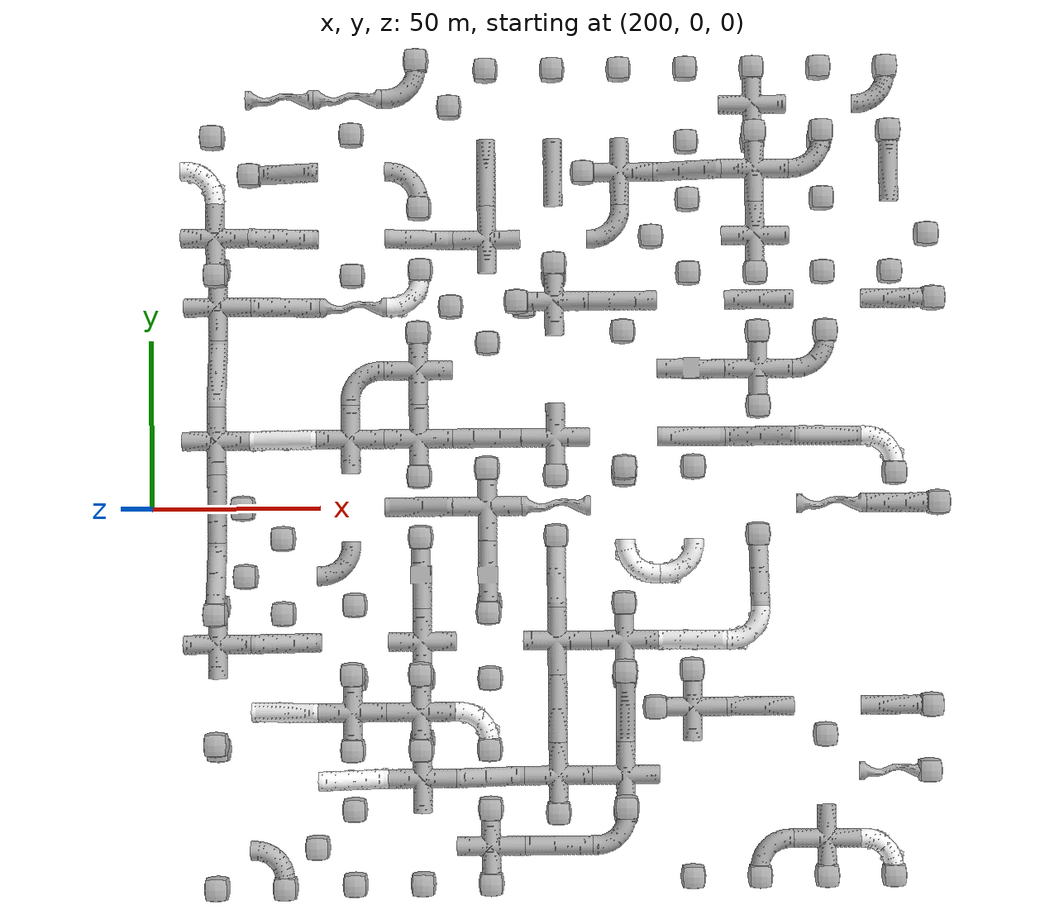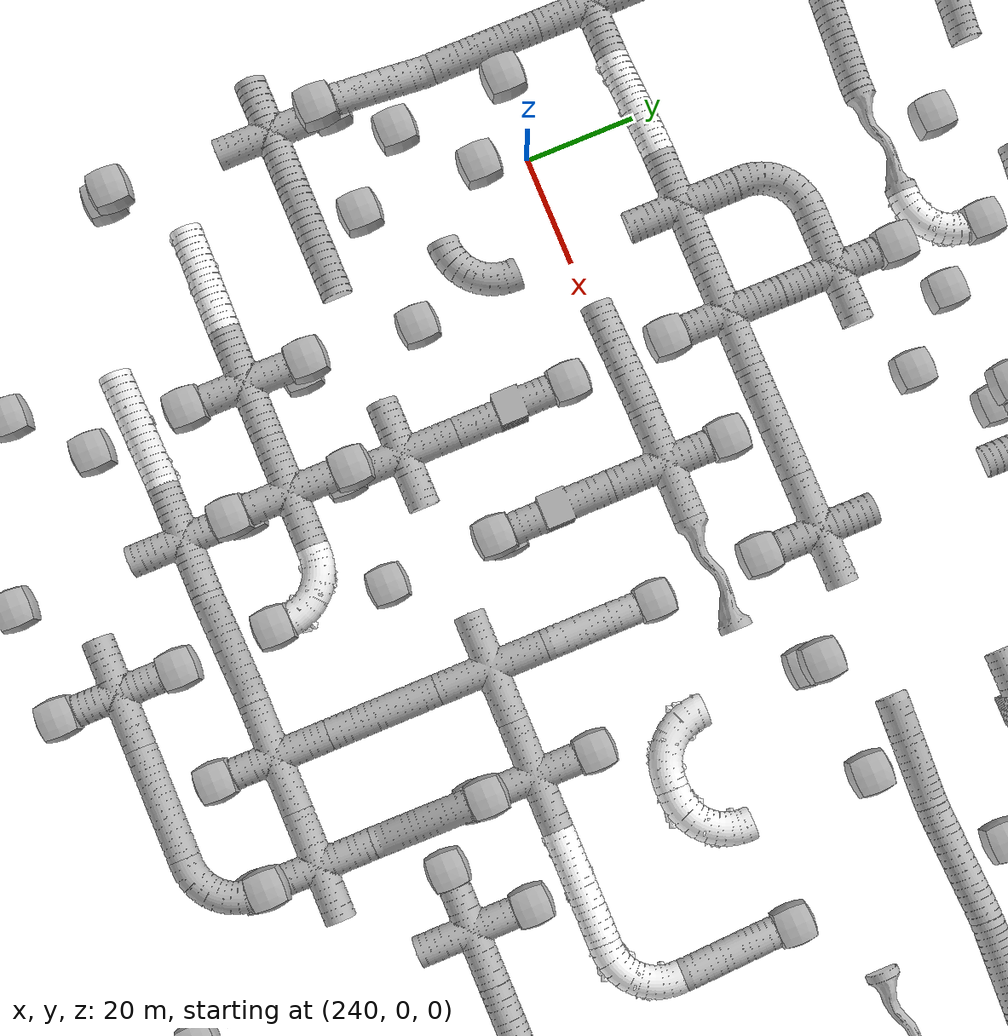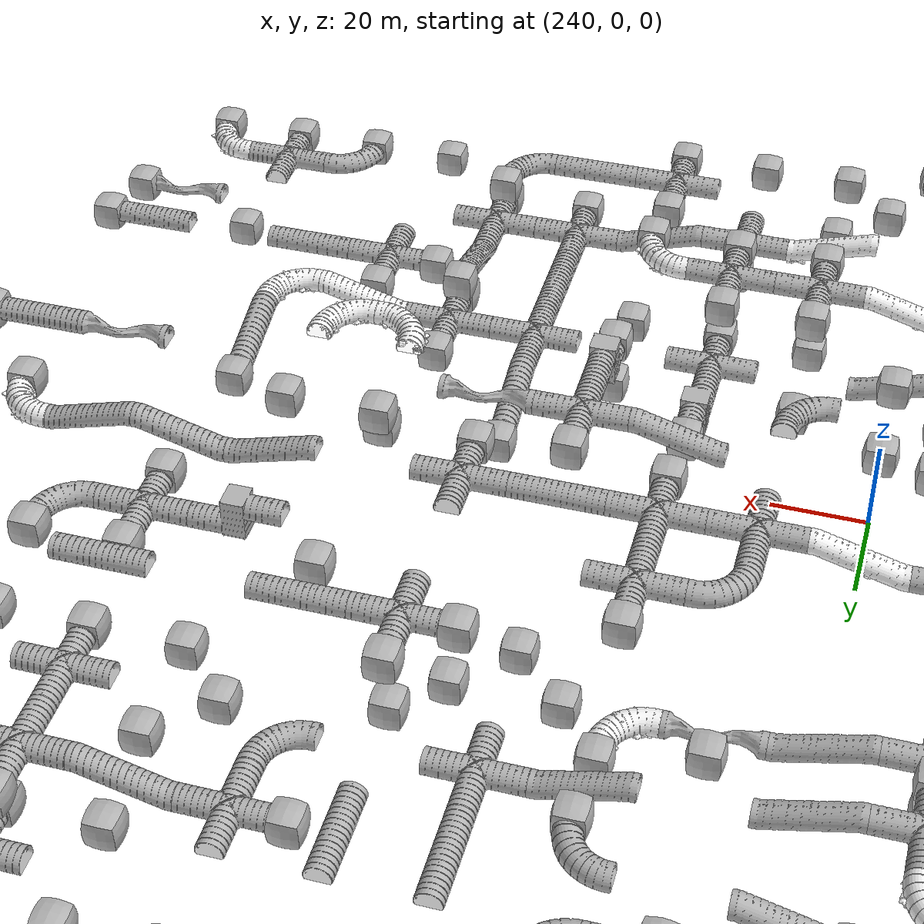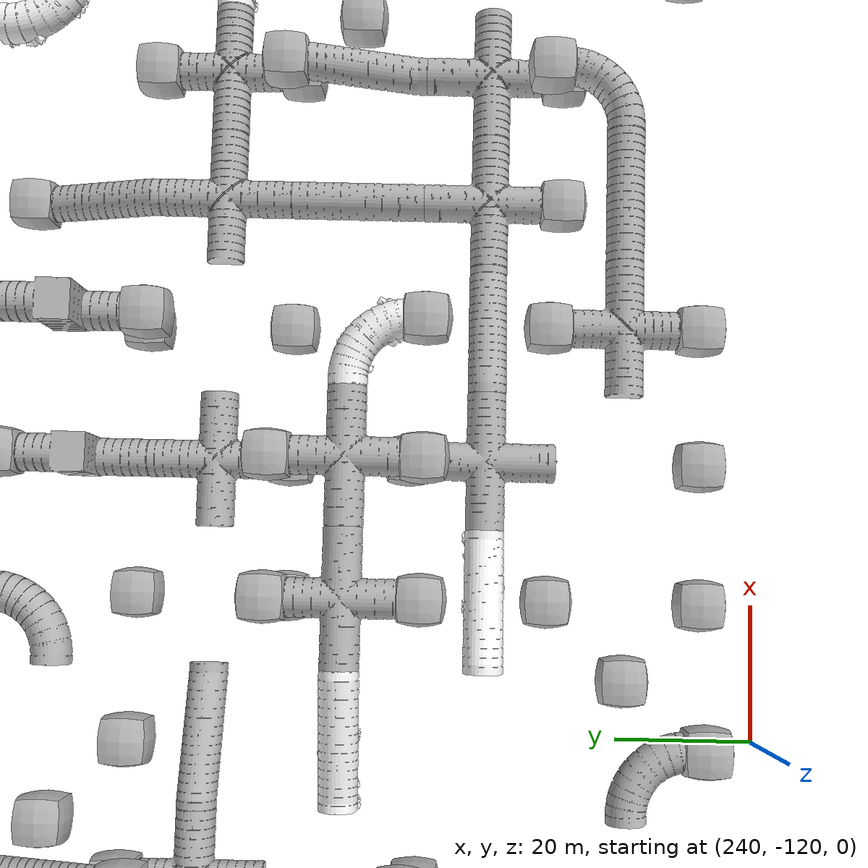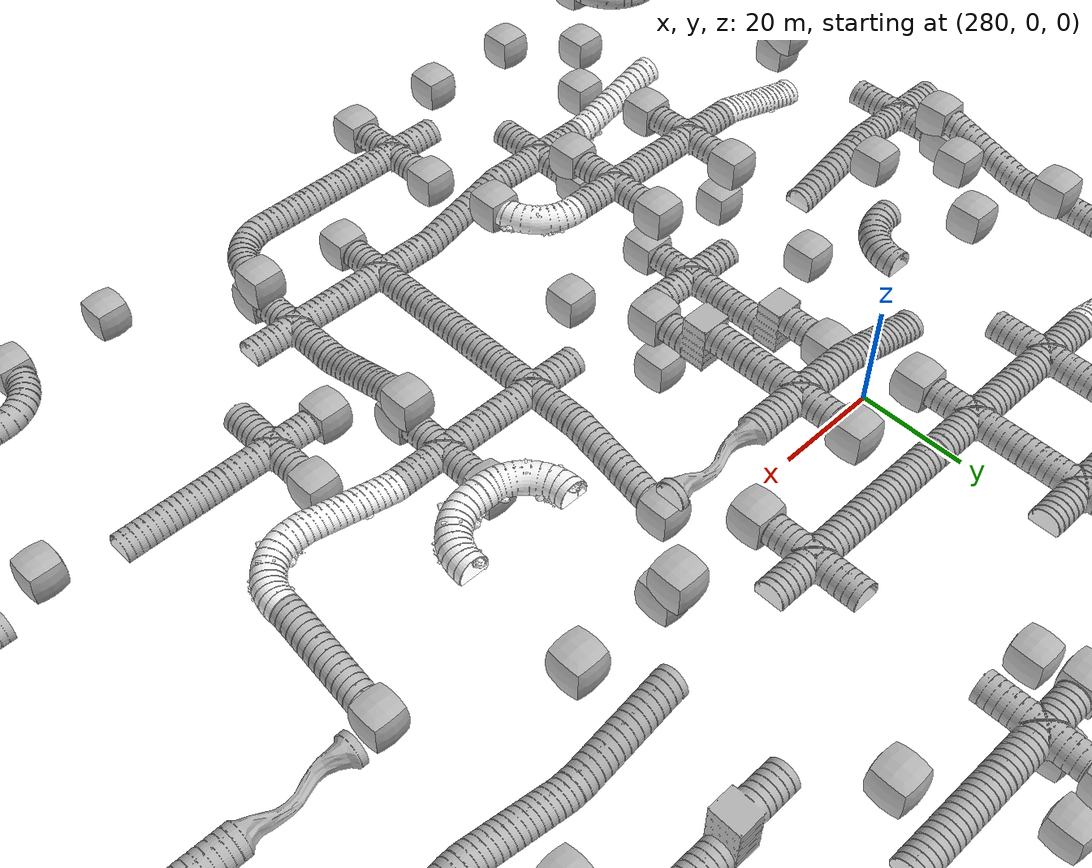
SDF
<sdf version="1.6">
 <world name="tunnel_circuit_practice_03">
  <include>
   <name>tile_27</name>
   <uri>model://tunnel_tile_blocker</uri>
   <pose>220.000000 109.000000 10.000000 0 0 0.000000</pose>
  </include>
  <include>
   <name>tile_28</name>
   <uri>model://constrained_tunnel_tile_short</uri>
   <pose>240.000000 120.000000 10.000000 0 0 1.570796</pose>
  </include>
  <include>
   <name>tile_29</name>
   <uri>model://constrained_tunnel_tile_short</uri>
   <pose>260.000000 120.000000 10.000000 0 0 1.570796</pose>
  </include>
  <include>
   <name>tile_30</name>
   <uri>model://tunnel_tile_2</uri>
   <pose>280.000000 120.000000 10.000000 0 0 3.141593</pose>
  </include>
  <include>
   <name>tile_31</name>
   <uri>model://tunnel_tile_blocker</uri>
   <pose>280.000000 131.000000 10.000000 0 0 0.000000</pose>
  </include>
  <include>
   <name>phone_1</name>
   <uri>model://Phone</uri>
   <pose>278.000000 121.200000 10.000000 -1.570796 0 0.261799</pose>
  </include>
  <include>
   <name>tile_33</name>
   <uri>model://tunnel_tile_blocker</uri>
   <pose>289.000000 120.000000 -5.000000 0 0 0.000000</pose>
  </include>
  <include>
   <name>tile_34</name>
   <uri>model://tunnel_tile_blocker</uri>
   <pose>300.000000 131.000000 -5.000000 0 0 0.000000</pose>
  </include>
  <include>
   <name>tile_36</name>
   <uri>model://tunnel_tile_blocker</uri>
   <pose>320.000000 131.000000 -5.000000 0 0 0.000000</pose>
  </include>
  <include>
   <name>tile_38</name>
   <uri>model://tunnel_tile_blocker</uri>
   <pose>340.000000 131.000000 -5.000000 0 0 0.000000</pose>
  </include>
  <include>
   <name>tile_40</name>
   <uri>model://tunnel_tile_blocker</uri>
   <pose>360.000000 131.000000 -5.000000 0 0 0.000000</pose>
  </include>
  <include>
   <name>tile_41</name>
   <uri>model://tunnel_tile_blocker</uri>
   <pose>360.000000 109.000000 -5.000000 0 0 0.000000</pose>
  </include>
  <include>
   <name>tile_42</name>
   <uri>model://tunnel_tile_1</uri>
   <pose>380.000000 120.000000 -5.000000 0 0 0.000000</pose>
  </include>
  <include>
   <name>tile_43</name>
   <uri>model://tunnel_tile_blocker</uri>
   <pose>380.000000 131.000000 -5.000000 0 0 0.000000</pose>
  </include>
  <include>
   <name>tile_44</name>
   <uri>model://tunnel_tile_blocker</uri>
   <pose>380.000000 109.000000 -5.000000 0 0 0.000000</pose>
  </include>
  <include>
   <name>tile_46</name>
   <uri>model://tunnel_tile_blocker</uri>
   <pose>400.000000 131.000000 -5.000000 0 0 0.000000</pose>
  </include>
  <include>
   <name>tile_47</name>
   <uri>model://tunnel_tile_blocker</uri>
   <pose>400.000000 109.000000 -5.000000 0 0 0.000000</pose>
  </include>
  <include>
   <name>tile_48</name>
   <uri>model://tunnel_tile_2</uri>
   <pose>420.000000 120.000000 -5.000000 0 0 3.141593</pose>
  </include>
  <include>
   <name>tile_49</name>
   <uri>model://tunnel_tile_blocker</uri>
   <pose>420.000000 131.000000 -5.000000 0 0 0.000000</pose>
  </include>
  <include>
   <name>tile_66</name>
   <uri>model://Rough Tunnel Tile 90-degree Turn</uri>
   <pose>220.000000 100.000000 5.000000 0 0 4.712389</pose>
  </include>
  <include>
   <name>tile_67</name>
   <uri>model://tunnel_tile_6</uri>
   <pose>240.000000 100.000000 -5.000000 0 0 4.712389</pose>
  </include>
  <include>
   <name>tile_68</name>
   <uri>model://tunnel_tile_blocker</uri>
   <pose>229.000000 100.000000 -5.000000 0 0 0.000000</pose>
  </include>
  <include>
   <name>tile_70</name>
   <uri>model://tunnel_tile_blocker</uri>
   <pose>260.000000 111.000000 0.000000 0 0 0.000000</pose>
  </include>
  <include>
   <name>tile_71</name>
   <uri>model://tunnel_tile_2</uri>
   <pose>280.000000 100.000000 0.000000 0 0 4.712389</pose>
  </include>
  <include>
   <name>tile_72</name>
   <uri>model://tunnel_tile_blocker</uri>
   <pose>280.000000 89.000000 0.000000 0 0 0.000000</pose>
  </include>
  <include>
   <name>tile_73</name>
   <uri>model://tunnel_tile_5</uri>
   <pose>300.000000 100.000000 -5.000000 0 0 3.141593</pose>
  </include>
  <include>
   <name>tile_74</name>
   <uri>model://tunnel_tile_5</uri>
   <pose>320.000000 100.000000 -5.000000 0 0 3.141593</pose>
  </include>
  <include>
   <name>tile_75</name>
   <uri>model://tunnel_tile_1</uri>
   <pose>340.000000 100.000000 -5.000000 0 0 0.000000</pose>
  </include>
  <include>
   <name>tile_76</name>
   <uri>model://tunnel_tile_blocker</uri>
   <pose>329.000000 100.000000 -5.000000 0 0 0.000000</pose>
  </include>
  <include>
   <name>tile_77</name>
   <uri>model://tunnel_tile_6</uri>
   <pose>360.000000 100.000000 -5.000000 0 0 4.712389</pose>
  </include>
  <include>
   <name>tile_78</name>
   <uri>model://tunnel_tile_1</uri>
   <pose>380.000000 100.000000 0.000000 0 0 0.000000</pose>
  </include>
  <include>
   <name>tile_79</name>
   <uri>model://tunnel_tile_blocker</uri>
   <pose>380.000000 111.000000 0.000000 0 0 0.000000</pose>
  </include>
  <include>
   <name>tile_80</name>
   <uri>model://tunnel_tile_2</uri>
   <pose>400.000000 100.000000 0.000000 0 0 3.141593</pose>
  </include>
  <include>
   <name>tile_81</name>
   <uri>model://tunnel_tile_blocker</uri>
   <pose>400.000000 111.000000 0.000000 0 0 0.000000</pose>
  </include>
  <include>
   <name>tile_82</name>
   <uri>model://tunnel_tile_5</uri>
   <pose>420.000000 100.000000 0.000000 0 0 3.141593</pose>
  </include>
  <include>
   <name>tile_83</name>
   <uri>model://tunnel_tile_blocker</uri>
   <pose>420.000000 111.000000 0.000000 0 0 0.000000</pose>
  </include>
  <include>
   <name>tile_102</name>
   <uri>model://tunnel_tile_1</uri>
   <pose>220.000000 80.000000 5.000000 0 0 0.000000</pose>
  </include>
  <include>
   <name>tile_104</name>
   <uri>model://tunnel_tile_blocker</uri>
   <pose>220.000000 69.000000 5.000000 0 0 0.000000</pose>
  </include>
  <include>
   <name>tile_105</name>
   <uri>model://tunnel_tile_6</uri>
   <pose>240.000000 80.000000 0.000000 0 0 1.570796</pose>
  </include>
  <include>
   <name>tile_107</name>
   <uri>model://tunnel_tile_blocker</uri>
   <pose>260.000000 69.000000 0.000000 0 0 0.000000</pose>
  </include>
  <include>
   <name>tile_108</name>
   <uri>model://tunnel_tile_6</uri>
   <pose>280.000000 80.000000 -5.000000 0 0 1.570796</pose>
  </include>
  <include>
   <name>tile_109</name>
   <uri>model://tunnel_tile_1</uri>
   <pose>300.000000 80.000000 -5.000000 0 0 0.000000</pose>
  </include>
  <include>
   <name>tile_111</name>
   <uri>model://tunnel_tile_blocker</uri>
   <pose>320.000000 69.000000 -5.000000 0 0 0.000000</pose>
  </include>
  <include>
   <name>tile_112</name>
   <uri>model://tunnel_tile_2</uri>
   <pose>340.000000 80.000000 -5.000000 0 0 3.141593</pose>
  </include>
  <include>
   <name>tile_114</name>
   <uri>model://tunnel_tile_blocker</uri>
   <pose>360.000000 69.000000 0.000000 0 0 0.000000</pose>
  </include>
  <include>
   <name>tile_115</name>
   <uri>model://tunnel_tile_blocker</uri>
   <pose>360.000000 91.000000 0.000000 0 0 0.000000</pose>
  </include>
  <include>
   <name>tile_116</name>
   <uri>model://tunnel_tile_blocker</uri>
   <pose>349.000000 80.000000 0.000000 0 0 0.000000</pose>
  </include>
  <include>
   <name>phone_2</name>
   <uri>model://Phone</uri>
   <pose>356.400000 80.200000 0.000000 -1.570796 0 0.000000</pose>
  </include>
  <include>
   <name>tile_117</name>
   <uri>model://tunnel_tile_1</uri>
   <pose>380.000000 80.000000 0.000000 0 0 0.000000</pose>
  </include>
  <include>
   <name>tile_118</name>
   <uri>model://tunnel_tile_blocker</uri>
   <pose>380.000000 69.000000 0.000000 0 0 0.000000</pose>
  </include>
  <include>
   <name>tile_120</name>
   <uri>model://tunnel_tile_blocker</uri>
   <pose>400.000000 91.000000 0.000000 0 0 0.000000</pose>
  </include>
  <include>
   <name>tile_121</name>
   <uri>model://tunnel_tile_blocker</uri>
   <pose>400.000000 69.000000 0.000000 0 0 0.000000</pose>
  </include>
  <include>
   <name>tile_123</name>
   <uri>model://tunnel_tile_blocker</uri>
   <pose>420.000000 69.000000 0.000000 0 0 0.000000</pose>
  </include>
  <include>
   <name>tile_124</name>
   <uri>model://tunnel_tile_blocker</uri>
   <pose>431.000000 80.000000 0.000000 0 0 0.000000</pose>
  </include>
  <include>
   <name>tile_143</name>
   <uri>model://tunnel_tile_1</uri>
   <pose>220.000000 60.000000 0.000000 0 0 0.000000</pose>
  </include>
  <include>
   <name>tile_144</name>
   <uri>model://tunnel_tile_blocker</uri>
   <pose>220.000000 71.000000 0.000000 0 0 0.000000</pose>
  </include>
  <include>
   <name>tile_145</name>
   <uri>model://tunnel_tile_6</uri>
   <pose>240.000000 60.000000 -5.000000 0 0 1.570796</pose>
  </include>
  <include>
   <name>tile_146</name>
   <uri>model://constrained_tunnel_tile_short</uri>
   <pose>260.000000 60.000000 -5.000000 0 0 1.570796</pose>
  </include>
  <include>
   <name>tile_147</name>
   <uri>model://Rough Tunnel Tile 90-degree Turn</uri>
   <pose>280.000000 60.000000 -5.000000 0 0 3.141593</pose>
  </include>
  <include>
   <name>tile_148</name>
   <uri>model://tunnel_tile_blocker</uri>
   <pose>280.000000 71.000000 -5.000000 0 0 0.000000</pose>
  </include>
  <include>
   <name>tile_150</name>
   <uri>model://tunnel_tile_blocker</uri>
   <pose>311.000000 60.000000 -5.000000 0 0 0.000000</pose>
  </include>
  <include>
   <name>tile_151</name>
   <uri>model://tunnel_tile_blocker</uri>
   <pose>289.000000 60.000000 -5.000000 0 0 0.000000</pose>
  </include>
  <include>
   <name>tile_152</name>
   <uri>model://tunnel_tile_blocker</uri>
   <pose>300.000000 49.000000 -5.000000 0 0 0.000000</pose>
  </include>
  <include>
   <name>tile_153</name>
   <uri>model://tunnel_tile_1</uri>
   <pose>320.000000 60.000000 10.000000 0 0 0.000000</pose>
  </include>
  <include>
   <name>tile_154</name>
   <uri>model://tunnel_tile_blocker</uri>
   <pose>309.000000 60.000000 10.000000 0 0 0.000000</pose>
  </include>
  <include>
   <name>tile_155</name>
   <uri>model://tunnel_tile_blocker</uri>
   <pose>320.000000 71.000000 10.000000 0 0 0.000000</pose>
  </include>
  <include>
   <name>tile_156</name>
   <uri>model://tunnel_tile_5</uri>
   <pose>340.000000 60.000000 10.000000 0 0 1.570796</pose>
  </include>
  <include>
   <name>tile_158</name>
   <uri>model://tunnel_tile_5</uri>
   <pose>380.000000 60.000000 10.000000 0 0 1.570796</pose>
  </include>
  <include>
   <name>tile_160</name>
   <uri>model://tunnel_tile_5</uri>
   <pose>420.000000 60.000000 10.000000 0 0 1.570796</pose>
  </include>
  <include>
   <name>tile_161</name>
   <uri>model://tunnel_tile_blocker</uri>
   <pose>431.000000 60.000000 10.000000 0 0 0.000000</pose>
  </include>
  <include>
   <name>tile_183</name>
   <uri>model://tunnel_tile_6</uri>
   <pose>220.000000 40.000000 0.000000 0 0 3.141593</pose>
  </include>
  <include>
   <name>tile_184</name>
   <uri>model://tunnel_tile_2</uri>
   <pose>260.000000 40.000000 10.000000 0 0 0.000000</pose>
  </include>
  <include>
   <name>tile_185</name>
   <uri>model://tunnel_tile_1</uri>
   <pose>280.000000 40.000000 10.000000 0 0 0.000000</pose>
  </include>
  <include>
   <name>tile_186</name>
   <uri>model://tunnel_tile_blocker</uri>
   <pose>280.000000 51.000000 10.000000 0 0 0.000000</pose>
  </include>
  <include>
   <name>tile_190</name>
   <uri>model://tunnel_tile_blocker</uri>
   <pose>340.000000 51.000000 10.000000 0 0 0.000000</pose>
  </include>
  <include>
   <name>tile_191</name>
   <uri>model://tunnel_tile_7</uri>
   <pose>360.000000 40.000000 5.000000 0 0 1.570796</pose>
  </include>
  <include>
   <name>tile_192</name>
   <uri>model://tunnel_tile_1</uri>
   <pose>380.000000 40.000000 5.000000 0 0 0.000000</pose>
  </include>
  <include>
   <name>tile_193</name>
   <uri>model://tunnel_tile_blocker</uri>
   <pose>380.000000 51.000000 5.000000 0 0 0.000000</pose>
  </include>
  <include>
   <name>tile_194</name>
   <uri>model://tunnel_tile_blocker</uri>
   <pose>380.000000 29.000000 5.000000 0 0 0.000000</pose>
  </include>
  <include>
   <name>tile_195</name>
   <uri>model://tunnel_tile_2</uri>
   <pose>400.000000 40.000000 5.000000 0 0 3.141593</pose>
  </include>
  <include>
   <name>tile_196</name>
   <uri>model://tunnel_tile_blocker</uri>
   <pose>400.000000 51.000000 5.000000 0 0 0.000000</pose>
  </include>
  <include>
   <name>tile_212</name>
   <uri>model://tunnel_tile_1</uri>
   <pose>220.000000 20.000000 5.000000 0 0 0.000000</pose>
  </include>
  <include>
   <name>extinguisher_1</name>
   <uri>model://Extinguisher</uri>
   <pose>222.000000 17.000000 5.000000 0 0 -0.261799</pose>
  </include>
  <include>
   <name>tile_213</name>
   <uri>model://Rough Tunnel Tile Ramp</uri>
   <pose>240.000000 20.000000 5.000000 0 0 4.712389</pose>
  </include>
  <include>
   <name>tile_214</name>
   <uri>model://tunnel_tile_1</uri>
   <pose>260.000000 20.000000 10.000000 0 0 0.000000</pose>
  </include>
  <include>
   <name>tile_215</name>
   <uri>model://tunnel_tile_1</uri>
   <pose>280.000000 20.000000 10.000000 0 0 0.000000</pose>
  </include>
  <include>
   <name>tile_216</name>
   <uri>model://tunnel_tile_blocker</uri>
   <pose>280.000000 9.000000 10.000000 0 0 0.000000</pose>
  </include>
  <include>
   <name>tile_217</name>
   <uri>model://tunnel_tile_5</uri>
   <pose>300.000000 20.000000 10.000000 0 0 1.570796</pose>
  </include>
  <include>
   <name>tile_218</name>
   <uri>model://tunnel_tile_1</uri>
   <pose>320.000000 20.000000 10.000000 0 0 0.000000</pose>
  </include>
  <include>
   <name>tile_219</name>
   <uri>model://tunnel_tile_blocker</uri>
   <pose>320.000000 9.000000 10.000000 0 0 0.000000</pose>
  </include>
  <include>
   <name>tile_221</name>
   <uri>model://tunnel_tile_blocker</uri>
   <pose>340.000000 9.000000 10.000000 0 0 0.000000</pose>
  </include>
  <include>
   <name>tile_222</name>
   <uri>model://tunnel_tile_6</uri>
   <pose>360.000000 20.000000 5.000000 0 0 1.570796</pose>
  </include>
  <include>
   <name>tile_223</name>
   <uri>model://tunnel_tile_6</uri>
   <pose>380.000000 20.000000 5.000000 0 0 4.712389</pose>
  </include>
  <include>
   <name>tile_224</name>
   <uri>model://tunnel_tile_6</uri>
   <pose>400.000000 20.000000 5.000000 0 0 1.570796</pose>
  </include>
  <include>
   <name>tile_225</name>
   <uri>model://Rough Tunnel Tile 90-degree Turn</uri>
   <pose>420.000000 20.000000 5.000000 0 0 4.712389</pose>
  </include>
  <include>
   <name>tile_226</name>
   <uri>model://tunnel_tile_blocker</uri>
   <pose>420.000000 9.000000 5.000000 0 0 0.000000</pose>
  </include>
  <include>
   <name>backpack_3</name>
   <uri>model://Backpack</uri>
   <pose>420.000000 15.200000 5.000000 0 0 -1.850049</pose>
  </include>
  <include>
   <name>tile_248</name>
   <uri>model://tunnel_tile_5</uri>
   <pose>220.000000 0.000000 5.000000 0 0 0.000000</pose>
  </include>
  <include>
   <name>tile_250</name>
   <uri>model://tunnel_tile_blocker</uri>
   <pose>229.000000 0.000000 15.000000 0 0 0.000000</pose>
  </include>
  <include>
   <name>tile_252</name>
   <uri>model://tunnel_tile_6</uri>
   <pose>280.000000 0.000000 10.000000 0 0 4.712389</pose>
  </include>
  <include>
   <name>tile_253</name>
   <uri>model://tunnel_tile_1</uri>
   <pose>300.000000 0.000000 15.000000 0 0 0.000000</pose>
  </include>
  <include>
   <name>tile_254</name>
   <uri>model://tunnel_tile_blocker</uri>
   <pose>300.000000 11.000000 15.000000 0 0 0.000000</pose>
  </include>
  <include>
   <name>tile_255</name>
   <uri>model://constrained_tunnel_tile_short</uri>
   <pose>320.000000 0.000000 15.000000 0 0 1.570796</pose>
  </include>
  <include>
   <name>tile_257</name>
   <uri>model://tunnel_tile_blocker</uri>
   <pose>340.000000 11.000000 15.000000 0 0 0.000000</pose>
  </include>
  <include>
   <name>tile_259</name>
   <uri>model://tunnel_tile_blocker</uri>
   <pose>360.000000 11.000000 15.000000 0 0 0.000000</pose>
  </include>
  <include>
   <name>tile_261</name>
   <uri>model://constrained_tunnel_tile_short</uri>
   <pose>400.000000 0.000000 15.000000 0 0 1.570796</pose>
  </include>
  <include>
   <name>tile_262</name>
   <uri>model://tunnel_tile_5</uri>
   <pose>420.000000 0.000000 15.000000 0 0 1.570796</pose>
  </include>
  <include>
   <name>tile_263</name>
   <uri>model://tunnel_tile_blocker</uri>
   <pose>431.000000 0.000000 15.000000 0 0 0.000000</pose>
  </include>
  <include>
   <name>tile_282</name>
   <uri>model://tunnel_tile_6</uri>
   <pose>220.000000 -20.000000 5.000000 0 0 3.141593</pose>
  </include>
  <include>
   <name>tile_283</name>
   <uri>model://tunnel_tile_blocker</uri>
   <pose>220.000000 -31.000000 10.000000 0 0 0.000000</pose>
  </include>
  <include>
   <name>tile_285</name>
   <uri>model://tunnel_tile_blocker</uri>
   <pose>240.000000 -31.000000 10.000000 0 0 0.000000</pose>
  </include>
  <include>
   <name>tile_286</name>
   <uri>model://tunnel_tile_blocker</uri>
   <pose>240.000000 -9.000000 10.000000 0 0 0.000000</pose>
  </include>
  <include>
   <name>tile_287</name>
   <uri>model://tunnel_tile_blocker</uri>
   <pose>229.000000 -20.000000 10.000000 0 0 0.000000</pose>
  </include>
  <include>
   <name>tile_288</name>
   <uri>model://tunnel_tile_2</uri>
   <pose>260.000000 -20.000000 10.000000 0 0 3.141593</pose>
  </include>
  <include>
   <name>tile_289</name>
   <uri>model://tunnel_tile_7</uri>
   <pose>280.000000 -20.000000 0.000000 0 0 0.000000</pose>
  </include>
  <include>
   <name>tile_290</name>
   <uri>model://tunnel_tile_blocker</uri>
   <pose>280.000000 -9.000000 5.000000 0 0 0.000000</pose>
  </include>
  <include>
   <name>tile_291</name>
   <uri>model://tunnel_tile_7</uri>
   <pose>300.000000 -20.000000 10.000000 0 0 0.000000</pose>
  </include>
  <include>
   <name>tile_292</name>
   <uri>model://tunnel_tile_blocker</uri>
   <pose>300.000000 -31.000000 10.000000 0 0 0.000000</pose>
  </include>
  <include>
   <name>tile_293</name>
   <uri>model://tunnel_tile_6</uri>
   <pose>320.000000 -20.000000 -5.000000 0 0 3.141593</pose>
  </include>
  <include>
   <name>tile_294</name>
   <uri>model://tunnel_tile_blocker</uri>
   <pose>320.000000 -9.000000 -5.000000 0 0 0.000000</pose>
  </include>
  <include>
   <name>extinguisher_2</name>
   <uri>model://Extinguisher</uri>
   <pose>318.500000 -13.700000 -4.320000 0 0 -0.436332</pose>
  </include>
  <include>
   <name>tile_295</name>
   <uri>model://Rough Tunnel Tile 90-degree Turn</uri>
   <pose>340.000000 -20.000000 15.000000 0 0 1.570796</pose>
  </include>
  <include>
   <name>tile_296</name>
   <uri>model://Rough Tunnel Tile 90-degree Turn</uri>
   <pose>360.000000 -20.000000 15.000000 0 0 3.141593</pose>
  </include>
  <include>
   <name>tile_297</name>
   <uri>model://tunnel_tile_6</uri>
   <pose>380.000000 -20.000000 0.000000 0 0 3.141593</pose>
  </include>
  <include>
   <name>tile_298</name>
   <uri>model://tunnel_tile_blocker</uri>
   <pose>380.000000 -9.000000 0.000000 0 0 0.000000</pose>
  </include>
  <include>
   <name>tile_316</name>
   <uri>model://tunnel_tile_1</uri>
   <pose>220.000000 -40.000000 5.000000 0 0 0.000000</pose>
  </include>
  <include>
   <name>tile_317</name>
   <uri>model://tunnel_tile_blocker</uri>
   <pose>220.000000 -29.000000 5.000000 0 0 0.000000</pose>
  </include>
  <include>
   <name>tile_319</name>
   <uri>model://tunnel_tile_6</uri>
   <pose>240.000000 -40.000000 0.000000 0 0 1.570796</pose>
  </include>
  <include>
   <name>tile_321</name>
   <uri>model://tunnel_tile_blocker</uri>
   <pose>260.000000 -29.000000 0.000000 0 0 0.000000</pose>
  </include>
  <include>
   <name>tile_322</name>
   <uri>model://tunnel_tile_blocker</uri>
   <pose>260.000000 -51.000000 0.000000 0 0 0.000000</pose>
  </include>
  <include>
   <name>tile_323</name>
   <uri>model://tunnel_tile_1</uri>
   <pose>280.000000 -40.000000 0.000000 0 0 0.000000</pose>
  </include>
  <include>
   <name>tile_324</name>
   <uri>model://tunnel_tile_blocker</uri>
   <pose>280.000000 -51.000000 0.000000 0 0 0.000000</pose>
  </include>
  <include>
   <name>tile_326</name>
   <uri>model://tunnel_tile_blocker</uri>
   <pose>300.000000 -29.000000 0.000000 0 0 0.000000</pose>
  </include>
  <include>
   <name>tile_327</name>
   <uri>model://tunnel_tile_blocker</uri>
   <pose>300.000000 -51.000000 0.000000 0 0 0.000000</pose>
  </include>
  <include>
   <name>tile_328</name>
   <uri>model://tunnel_tile_1</uri>
   <pose>320.000000 -40.000000 0.000000 0 0 0.000000</pose>
  </include>
  <include>
   <name>tile_329</name>
   <uri>model://tunnel_tile_1</uri>
   <pose>340.000000 -40.000000 0.000000 0 0 0.000000</pose>
  </include>
  <include>
   <name>tile_330</name>
   <uri>model://tunnel_tile_blocker</uri>
   <pose>340.000000 -51.000000 0.000000 0 0 0.000000</pose>
  </include>
  <include>
   <name>tile_331</name>
   <uri>model://tunnel_tile_blocker</uri>
   <pose>340.000000 -29.000000 0.000000 0 0 0.000000</pose>
  </include>
  <include>
   <name>tile_332</name>
   <uri>model://Rough Tunnel Tile Ramp</uri>
   <pose>360.000000 -40.000000 0.000000 0 0 4.712389</pose>
  </include>
  <include>
   <name>tile_333</name>
   <uri>model://Rough Tunnel Tile 90-degree Turn</uri>
   <pose>380.000000 -40.000000 5.000000 0 0 3.141593</pose>
  </include>
  <include>
   <name>tile_354</name>
   <uri>model://tunnel_tile_blocker</uri>
   <pose>220.000000 -71.000000 5.000000 0 0 0.000000</pose>
  </include>
  <include>
   <name>tile_355</name>
   <uri>model://Rough Tunnel Tile Ramp</uri>
   <pose>240.000000 -60.000000 5.000000 0 0 4.712389</pose>
  </include>
  <include>
   <name>tile_356</name>
   <uri>model://tunnel_tile_1</uri>
   <pose>260.000000 -60.000000 10.000000 0 0 0.000000</pose>
  </include>
  <include>
   <name>tile_357</name>
   <uri>model://tunnel_tile_blocker</uri>
   <pose>260.000000 -49.000000 10.000000 0 0 0.000000</pose>
  </include>
  <include>
   <name>tile_358</name>
   <uri>model://tunnel_tile_blocker</uri>
   <pose>260.000000 -71.000000 10.000000 0 0 0.000000</pose>
  </include>
  <include>
   <name>tile_359</name>
   <uri>model://tunnel_tile_1</uri>
   <pose>280.000000 -60.000000 10.000000 0 0 0.000000</pose>
  </include>
  <include>
   <name>tile_360</name>
   <uri>model://tunnel_tile_blocker</uri>
   <pose>280.000000 -49.000000 10.000000 0 0 0.000000</pose>
  </include>
  <include>
   <name>tile_361</name>
   <uri>model://tunnel_tile_blocker</uri>
   <pose>280.000000 -71.000000 10.000000 0 0 0.000000</pose>
  </include>
  <include>
   <name>tile_362</name>
   <uri>model://Rough Tunnel Tile 90-degree Turn</uri>
   <pose>300.000000 -60.000000 10.000000 0 0 4.712389</pose>
  </include>
  <include>
   <name>tile_363</name>
   <uri>model://tunnel_tile_blocker</uri>
   <pose>300.000000 -71.000000 10.000000 0 0 0.000000</pose>
  </include>
  <include>
   <name>extinguisher_3</name>
   <uri>model://Extinguisher</uri>
   <pose>300.000000 -62.200000 10.000000 0 0 0.436332</pose>
  </include>
  <include>
   <name>tile_364</name>
   <uri>model://tunnel_tile_5</uri>
   <pose>320.000000 -60.000000 0.000000 0 0 3.141593</pose>
  </include>
  <include>
   <name>tile_365</name>
   <uri>model://tunnel_tile_6</uri>
   <pose>340.000000 -60.000000 0.000000 0 0 0.000000</pose>
  </include>
  <include>
   <name>tile_366</name>
   <uri>model://tunnel_tile_blocker</uri>
   <pose>340.000000 -49.000000 5.000000 0 0 0.000000</pose>
  </include>
  <include>
   <name>tile_367</name>
   <uri>model://tunnel_tile_1</uri>
   <pose>360.000000 -60.000000 0.000000 0 0 0.000000</pose>
  </include>
  <include>
   <name>tile_368</name>
   <uri>model://tunnel_tile_blocker</uri>
   <pose>349.000000 -60.000000 0.000000 0 0 0.000000</pose>
  </include>
  <include>
   <name>tile_369</name>
   <uri>model://tunnel_tile_blocker</uri>
   <pose>360.000000 -49.000000 0.000000 0 0 0.000000</pose>
  </include>
  <include>
   <name>tile_370</name>
   <uri>model://tunnel_tile_5</uri>
   <pose>380.000000 -60.000000 0.000000 0 0 1.570796</pose>
  </include>
  <include>
   <name>tile_372</name>
   <uri>model://tunnel_tile_5</uri>
   <pose>420.000000 -60.000000 0.000000 0 0 1.570796</pose>
  </include>
  <include>
   <name>tile_373</name>
   <uri>model://tunnel_tile_blocker</uri>
   <pose>431.000000 -60.000000 0.000000 0 0 0.000000</pose>
  </include>
  <include>
   <name>tile_395</name>
   <uri>model://tunnel_tile_blocker</uri>
   <pose>220.000000 -69.000000 10.000000 0 0 0.000000</pose>
  </include>
  <include>
   <name>tile_397</name>
   <uri>model://Rough Tunnel Tile Ramp</uri>
   <pose>260.000000 -80.000000 5.000000 0 0 1.570796</pose>
  </include>
  <include>
   <name>tile_398</name>
   <uri>model://tunnel_tile_1</uri>
   <pose>280.000000 -80.000000 5.000000 0 0 0.000000</pose>
  </include>
  <include>
   <name>tile_399</name>
   <uri>model://tunnel_tile_blocker</uri>
   <pose>280.000000 -69.000000 5.000000 0 0 0.000000</pose>
  </include>
  <include>
   <name>tile_400</name>
   <uri>model://tunnel_tile_6</uri>
   <pose>300.000000 -80.000000 0.000000 0 0 1.570796</pose>
  </include>
  <include>
   <name>tile_401</name>
   <uri>model://tunnel_tile_1</uri>
   <pose>320.000000 -80.000000 0.000000 0 0 0.000000</pose>
  </include>
  <include>
   <name>tile_402</name>
   <uri>model://tunnel_tile_blocker</uri>
   <pose>320.000000 -91.000000 0.000000 0 0 0.000000</pose>
  </include>
  <include>
   <name>tile_403</name>
   <uri>model://tunnel_tile_1</uri>
   <pose>340.000000 -80.000000 0.000000 0 0 0.000000</pose>
  </include>
  <include>
   <name>tile_404</name>
   <uri>model://tunnel_tile_blocker</uri>
   <pose>340.000000 -91.000000 0.000000 0 0 0.000000</pose>
  </include>
  <include>
   <name>tile_408</name>
   <uri>model://tunnel_tile_blocker</uri>
   <pose>400.000000 -69.000000 -5.000000 0 0 0.000000</pose>
  </include>
  <include>
   <name>tile_409</name>
   <uri>model://constrained_tunnel_tile_short</uri>
   <pose>420.000000 -80.000000 -5.000000 0 0 1.570796</pose>
  </include>
  <include>
   <name>tile_410</name>
   <uri>model://tunnel_tile_blocker</uri>
   <pose>431.000000 -80.000000 -5.000000 0 0 0.000000</pose>
  </include>
  <include>
   <name>tile_434</name>
   <uri>model://tunnel_tile_blocker</uri>
   <pose>220.000000 -111.000000 10.000000 0 0 0.000000</pose>
  </include>
  <include>
   <name>tile_435</name>
   <uri>model://tunnel_tile_2</uri>
   <pose>240.000000 -100.000000 10.000000 0 0 4.712389</pose>
  </include>
  <include>
   <name>tile_436</name>
   <uri>model://tunnel_tile_blocker</uri>
   <pose>240.000000 -111.000000 10.000000 0 0 0.000000</pose>
  </include>
  <include>
   <name>tile_438</name>
   <uri>model://tunnel_tile_blocker</uri>
   <pose>260.000000 -111.000000 5.000000 0 0 0.000000</pose>
  </include>
  <include>
   <name>tile_439</name>
   <uri>model://tunnel_tile_blocker</uri>
   <pose>260.000000 -89.000000 5.000000 0 0 0.000000</pose>
  </include>
  <include>
   <name>tile_440</name>
   <uri>model://tunnel_tile_blocker</uri>
   <pose>249.000000 -100.000000 5.000000 0 0 0.000000</pose>
  </include>
  <include>
   <name>tile_442</name>
   <uri>model://tunnel_tile_blocker</uri>
   <pose>280.000000 -111.000000 5.000000 0 0 0.000000</pose>
  </include>
  <include>
   <name>tile_443</name>
   <uri>model://tunnel_tile_1</uri>
   <pose>300.000000 -100.000000 5.000000 0 0 0.000000</pose>
  </include>
  <include>
   <name>tile_444</name>
   <uri>model://tunnel_tile_blocker</uri>
   <pose>300.000000 -89.000000 5.000000 0 0 0.000000</pose>
  </include>
  <include>
   <name>tile_445</name>
   <uri>model://tunnel_tile_blocker</uri>
   <pose>300.000000 -111.000000 5.000000 0 0 0.000000</pose>
  </include>
  <include>
   <name>tile_446</name>
   <uri>model://tunnel_tile_5</uri>
   <pose>320.000000 -100.000000 5.000000 0 0 1.570796</pose>
  </include>
  <include>
   <name>tile_447</name>
   <uri>model://tunnel_tile_2</uri>
   <pose>340.000000 -100.000000 5.000000 0 0 3.141593</pose>
  </include>
  <include>
   <name>tile_448</name>
   <uri>model://tunnel_tile_blocker</uri>
   <pose>340.000000 -89.000000 5.000000 0 0 0.000000</pose>
  </include>
  <include>
   <name>tile_450</name>
   <uri>model://tunnel_tile_blocker</uri>
   <pose>360.000000 -111.000000 -5.000000 0 0 0.000000</pose>
  </include>
  <include>
   <name>phone_4</name>
   <uri>model://Phone</uri>
   <pose>359.800000 -105.600000 -5.000000 -1.570796 0 0.209440</pose>
  </include>
  <include>
   <name>tile_451</name>
   <uri>model://tunnel_tile_2</uri>
   <pose>380.000000 -100.000000 -5.000000 0 0 0.000000</pose>
  </include>
  <include>
   <name>tile_452</name>
   <uri>model://tunnel_tile_blocker</uri>
   <pose>380.000000 -111.000000 -5.000000 0 0 0.000000</pose>
  </include>
  <include>
   <name>tile_453</name>
   <uri>model://tunnel_tile_1</uri>
   <pose>400.000000 -100.000000 -5.000000 0 0 0.000000</pose>
  </include>
  <include>
   <name>tile_454</name>
   <uri>model://tunnel_tile_blocker</uri>
   <pose>400.000000 -111.000000 -5.000000 0 0 0.000000</pose>
  </include>
  <include>
   <name>tile_455</name>
   <uri>model://Rough Tunnel Tile 90-degree Turn</uri>
   <pose>420.000000 -100.000000 -5.000000 0 0 4.712389</pose>
  </include>
  <include>
   <name>tile_456</name>
   <uri>model://tunnel_tile_blocker</uri>
   <pose>420.000000 -111.000000 -5.000000 0 0 0.000000</pose>
  </include>
 </world>
</sdf>
